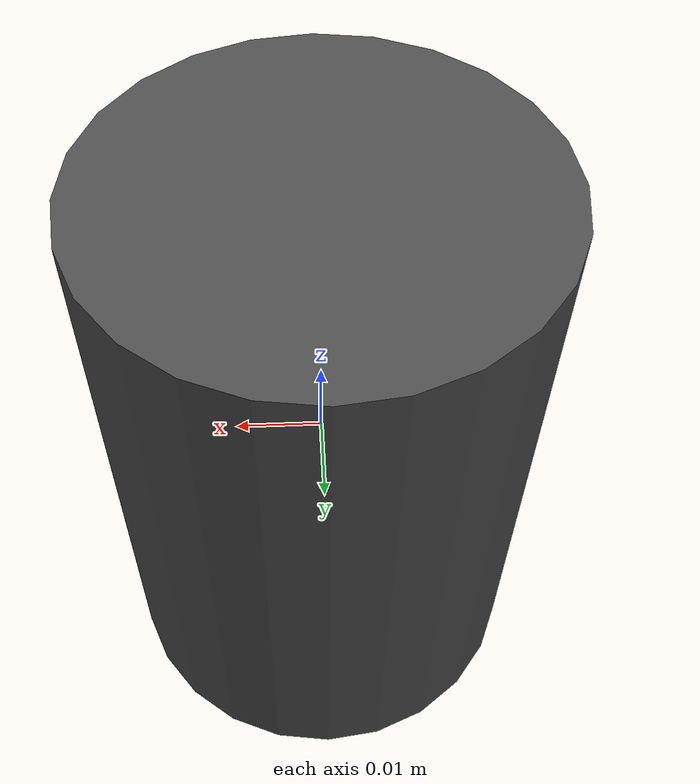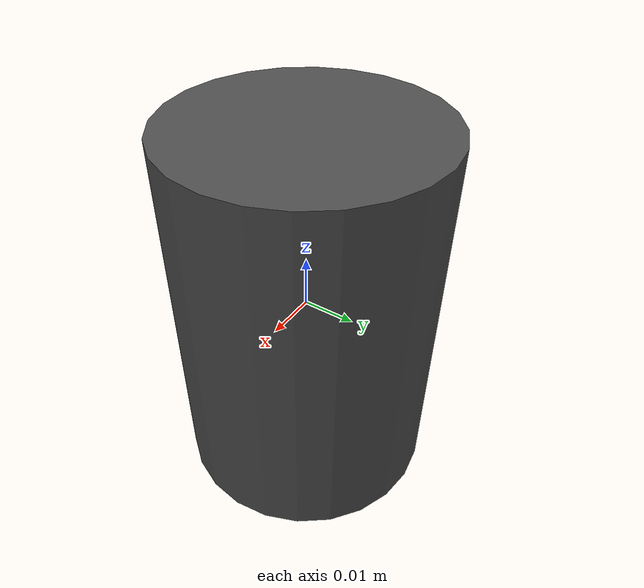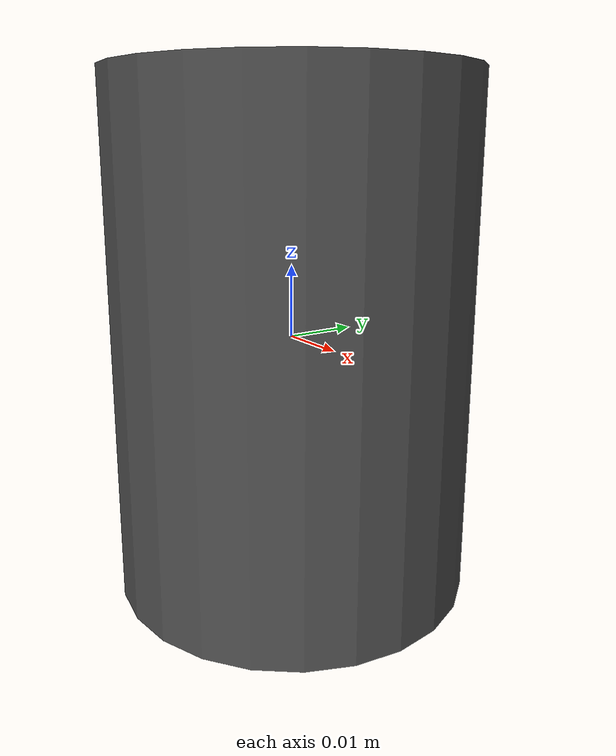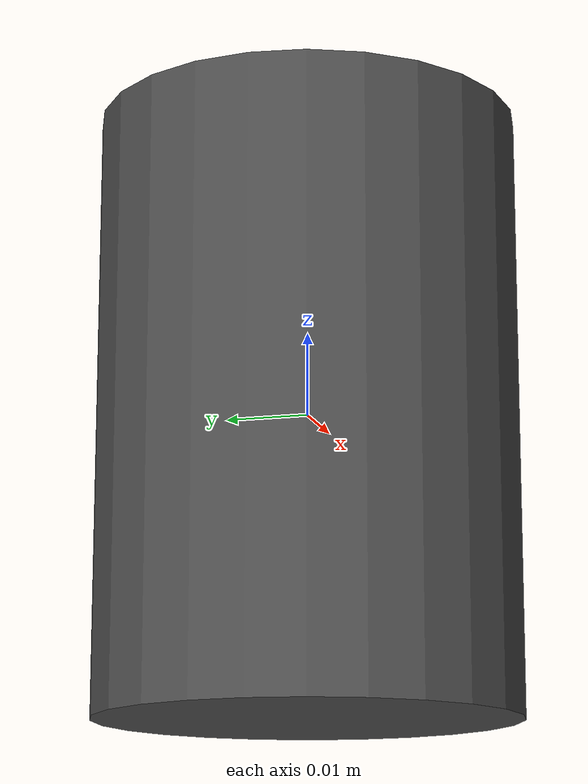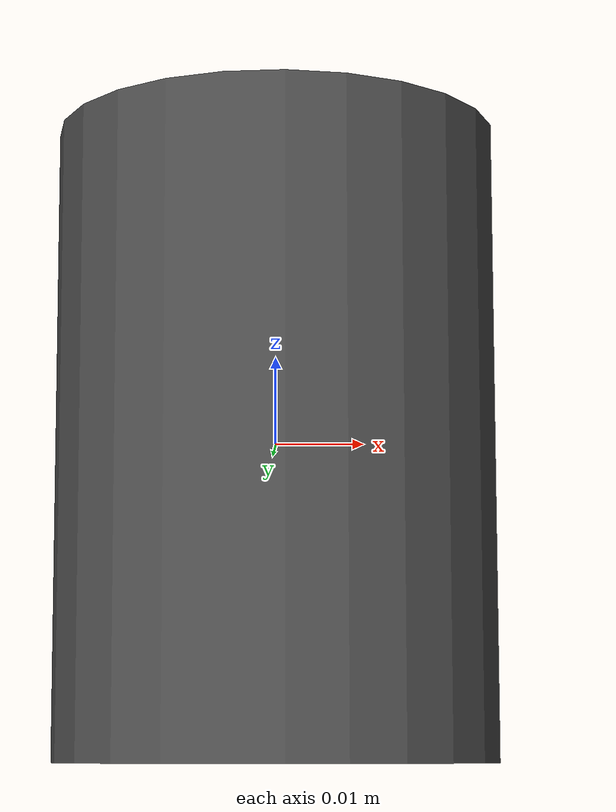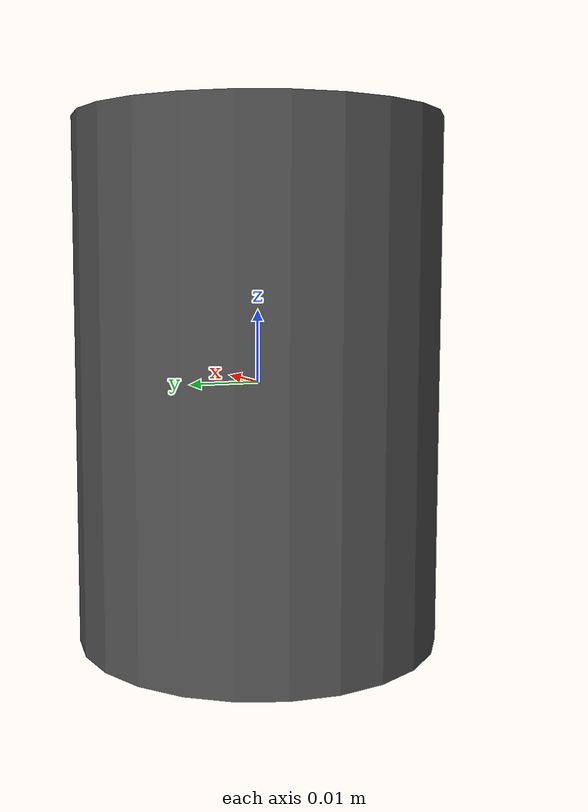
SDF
<?xml version="1.0" ?>
<sdf version="1.6">
  <model name="rig_velodyne">
    <static>true</static>
    <link name="velodyne_link">
      <pose>0 0 0 0 0 0</pose>
      <inertial>
        <mass>0.83</mass>
        <inertia>
          <ixx>0.000485</ixx>
          <iyy>0.000485</iyy>
          <izz>0.000259</izz>
          <ixy>0</ixy>
          <ixz>0</ixz>
          <iyz>0</iyz>
        </inertia>
      </inertial>

      <visual name="velodyne_visual">
        <geometry>
          <cylinder>
            <radius>0.025</radius>
            <length>0.0717</length>
          </cylinder>
        </geometry>
        <material>
          <script>
            <name>Gazebo/DarkGrey</name>
            <uri>file://media/materials/scripts/gazebo.material</uri>
          </script>
        </material>
      </visual>

      <sensor type="ray" name="velodyne-VLP16">
        <pose>0 0 0 0 0 0</pose>
        <visualize>false</visualize>
        <update_rate>10</update_rate>
        <ray>
          <scan>
            <horizontal>
              <samples>1800</samples>
              <resolution>1</resolution>
              <min_angle>-3.14159265359</min_angle>
              <max_angle>3.14159265359</max_angle>
            </horizontal>
            <vertical>
              <samples>16</samples>
              <resolution>1</resolution>
              <min_angle>-0.261799</min_angle>
              <max_angle>0.261799</max_angle>
            </vertical>
          </scan>
          <range>
            <min>0.1</min>
            <max>130.0</max>
            <resolution>0.001</resolution>
          </range>
          <noise>
            <type>gaussian</type>
            <mean>0.0</mean>
            <stddev>0.008</stddev>
          </noise>
        </ray>

        <plugin name="gazebo_ros_laser_controller" filename="libgazebo_ros_velodyne_laser.so">
          <topicName>/velodyne_points</topicName>
          <frameName>velodyne_link</frameName>
          <min_range>0.1</min_range>
          <max_range>130.0</max_range>
          <gaussianNoise>0.008</gaussianNoise>
        </plugin>
      </sensor>
    </link>
  </model>
</sdf>
